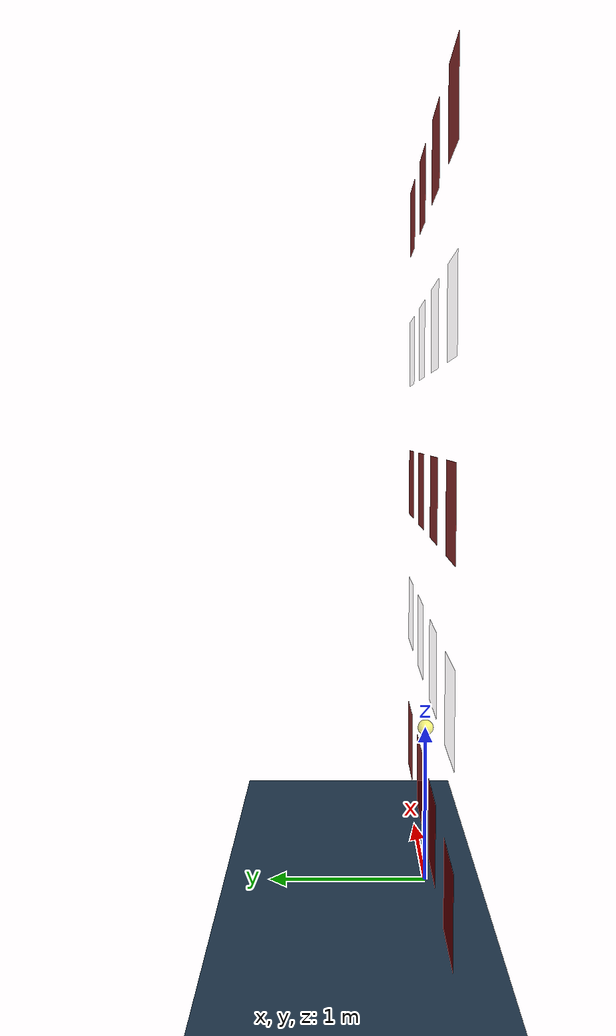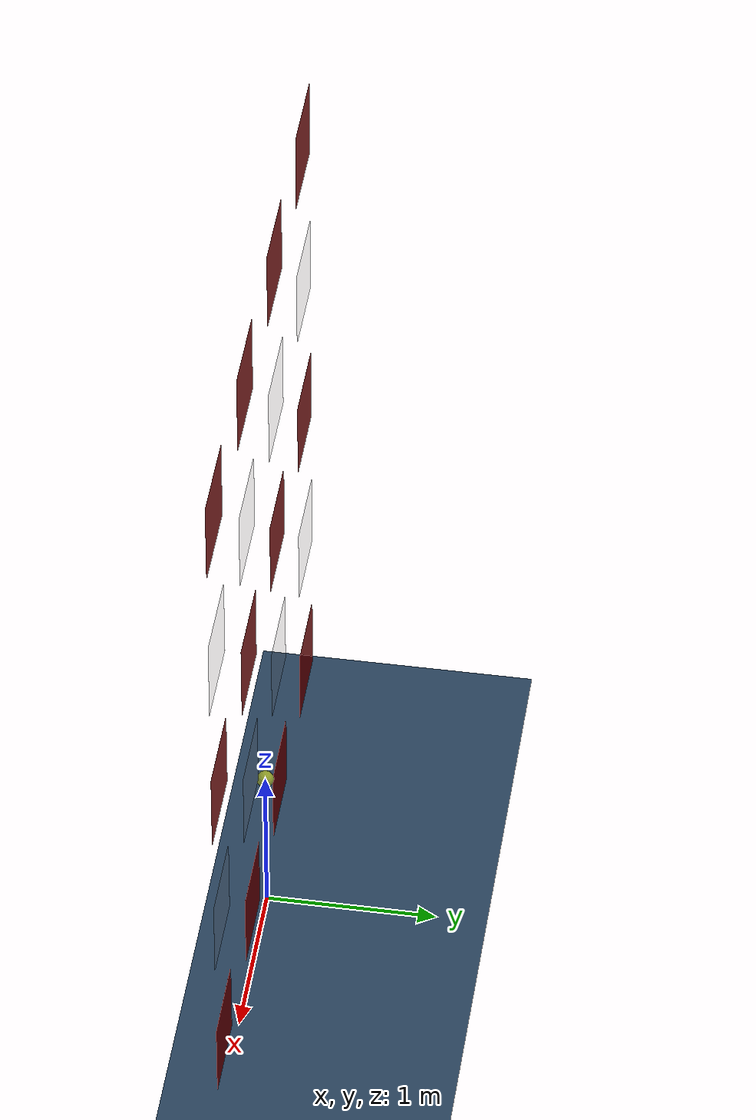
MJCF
<!-- Reference: context-switch-v1224 -->
<mujoco model="ZigzagReading">
  <option timestep="0.005"/>
  <option gravity="0 0 0"/>

  <visual>
    <map force="0.1" zfar="30"/>
    <rgba haze="0.15 0.25 0.35 1"/>
    <global offwidth="80" offheight="80"/>
  </visual>

  <asset>
    <texture type="skybox" builtin="gradient" rgb1=".3 .5 .7" rgb2="0 0 0" width="32" height="512"/>
    <texture name="grid" type="2d" builtin="checker" width="512" height="512" rgb1=".1 .2 .3" rgb2=".2 .3 .4"/>
    <material name="grid" texture="grid" texrepeat="1 1" texuniform="true"/>
  </asset>

  <worldbody>
    <camera name="single-eye" pos="0 0 4.5" euler="0 0 0"/>
    <light name="top" directional="true" castshadow="false" cutoff="4" exponent="20" diffuse="1 1 1" pos="0 0 20" dir="0 0 -1"/>

    <geom name="floor" size="0 0 .05" type="plane" material="grid" condim="3"/>

    <geom name="grid-0" type="box" pos="-1.5 0 4.5" size="0.25 0.0001 0.25" rgba="0.5 0 0 0.85"/>
    <geom name="grid-1" type="box" pos="-0.5 0 4.5" size="0.25 0.0001 0.25" rgba="0.5 0 0 0.85"/>
    <geom name="grid-2" type="box" pos="0.5 0 4.5" size="0.25 0.0001 0.25" rgba="0.5 0 0 0.85"/>
    <geom name="grid-3" type="box" pos="1.5 0 4.5" size="0.25 0.0001 0.25" rgba="0.5 0 0 0.85"/>

    <geom name="vacant-grid-4" type="box" pos="-1.5 0 3.5" size="0.25 0.0001 0.25" rgba="0.5 0.5 0.5 0.15"/>
    <geom name="vacant-grid-5" type="box" pos="-0.5 0 3.5" size="0.25 0.0001 0.25" rgba="0.5 0.5 0.5 0.15"/>
    <geom name="vacant-grid-6" type="box" pos="0.5 0 3.5" size="0.25 0.0001 0.25" rgba="0.5 0.5 0.5 0.15"/>
    <geom name="vacant-grid-7" type="box" pos="1.5 0 3.5" size="0.25 0.0001 0.25" rgba="0.5 0.5 0.5 0.15"/>

    <geom name="grid-8" type="box" pos="-1.5 0 2.5" size="0.25 0.0001 0.25" rgba="0.5 0 0 0.85"/>
    <geom name="grid-9" type="box" pos="-0.5 0 2.5" size="0.25 0.0001 0.25" rgba="0.5 0 0 0.85"/>
    <geom name="grid-10" type="box" pos="0.5 0 2.5" size="0.25 0.0001 0.25" rgba="0.5 0 0 0.85"/>
    <geom name="grid-11" type="box" pos="1.5 0 2.5" size="0.25 0.0001 0.25" rgba="0.5 0 0 0.85"/>

    <geom name="vacant-grid-12" type="box" pos="-1.5 0 1.5" size="0.25 0.0001 0.25" rgba="0.5 0.5 0.5 0.15"/>
    <geom name="vacant-grid-13" type="box" pos="-0.5 0 1.5" size="0.25 0.0001 0.25" rgba="0.5 0.5 0.5 0.15"/>
    <geom name="vacant-grid-14" type="box" pos="0.5 0 1.5" size="0.25 0.0001 0.25" rgba="0.5 0.5 0.5 0.15"/>
    <geom name="vacant-grid-15" type="box" pos="1.5 0 1.5" size="0.25 0.0001 0.25" rgba="0.5 0.5 0.5 0.15"/>

    <geom name="grid-16" type="box" pos="-1.5 0 0.5" size="0.25 0.0001 0.25" rgba="0.5 0 0 0.85"/>
    <geom name="grid-17" type="box" pos="-0.5 0 0.5" size="0.25 0.0001 0.25" rgba="0.5 0 0 0.85"/>
    <geom name="grid-18" type="box" pos="0.5 0 0.5" size="0.25 0.0001 0.25" rgba="0.5 0 0 0.85"/>
    <geom name="grid-19" type="box" pos="1.5 0 0.5" size="0.25 0.0001 0.25" rgba="0.5 0 0 0.85"/>

    <body name="focus" pos="0 0 1">
      <freejoint/>
      <geom name="focus" type="sphere" size="0.05" rgba="1 1 0 0.5"/>  # The diameter was 0.1.
    </body>
  </worldbody>
</mujoco>
